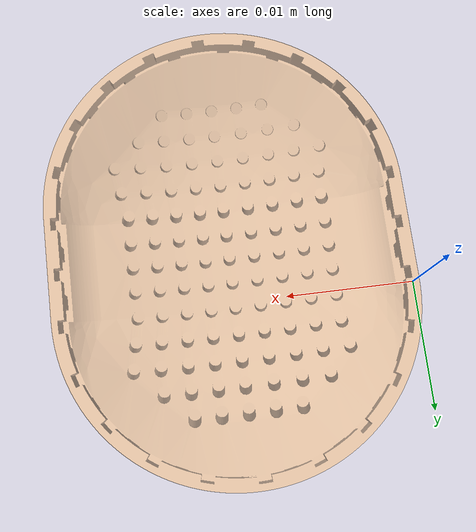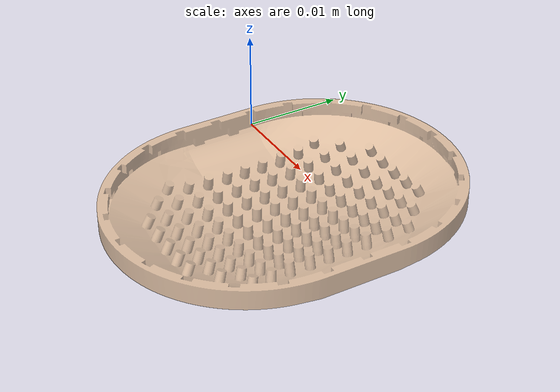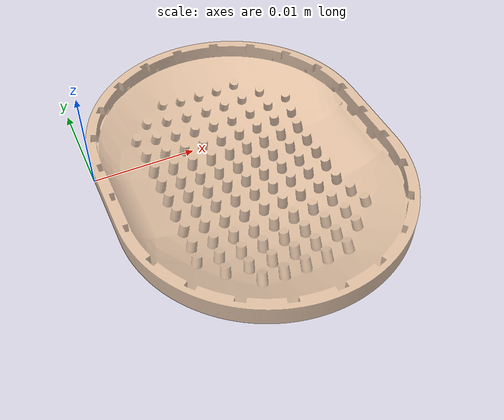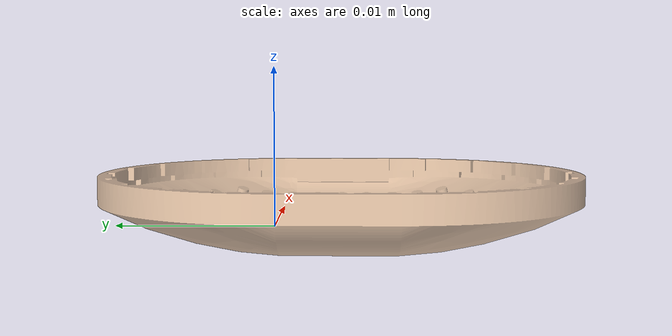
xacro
<?xml version="1.0"?>
<robot xmlns:xacro="http://www.ros.org/wiki/xacro" name="fingertip">

  <!-- Parameters: mesh path and frame names -->
  <xacro:arg name="mesh_file"    default="package://its_ros2/meshes/digitac_skin.stl"/>  <!-- Location of the mesh .stl -->
  <xacro:arg name="finger_frame" default="fingertip"/>                                <!-- Name of the finger frame  -->
  <xacro:arg name="fix_on_world" default="true"/>                                <!-- Name of the finger frame  -->

  <!-- World anchor -->
  <link name="world"/>

  <!-- Fingertip link -->
  <link name="$(arg finger_frame)">
    <visual>
      <geometry>
        <mesh filename="$(arg mesh_file)" scale="0.001 0.001 0.001"/>
      </geometry>
      <material name="skin">
        <color rgba="0.9 0.75 0.6 0.8"/>
      </material>
    </visual>
    <collision>
      <geometry>
        <mesh filename="$(arg mesh_file)" scale="0.001 0.001 0.001"/>
      </geometry>
    </collision>
  </link>

  <!-- Fixed joint: world → fingertip (only when fix_on_world:=true) -->
  <xacro:if value="$(arg fix_on_world)">
    <joint name="world_to_fingertip" type="fixed">
      <parent link="world"/>
      <child  link="$(arg finger_frame)"/>
      <origin xyz="0 0 0" rpy="0 0 0"/>
    </joint>
  </xacro:if>

</robot>
